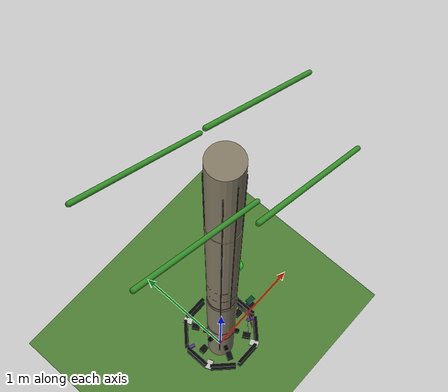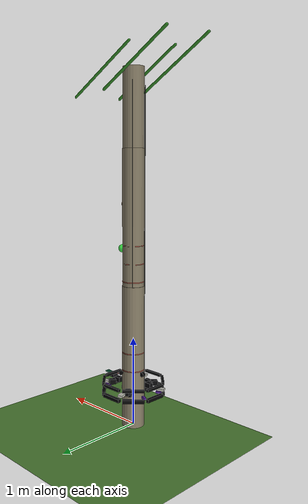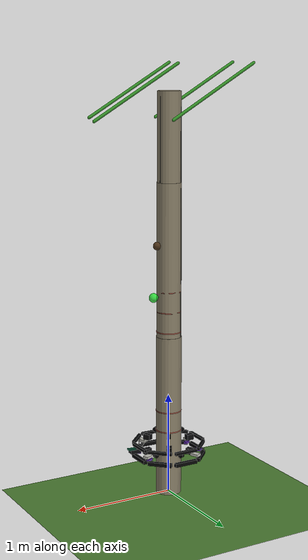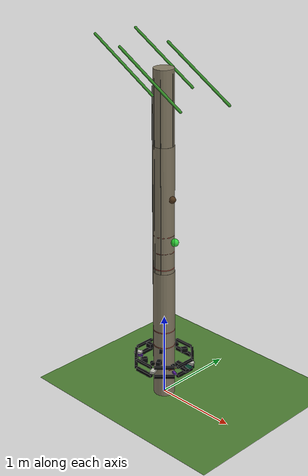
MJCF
<mujoco model="palmclimber_base_training_scene">

  <compiler angle="radian" autolimits="true"/>

  <option timestep="0.0015" gravity="0 0 -9.81" solver="Newton"
          iterations="120" tolerance="1e-9" integrator="implicitfast">
    <flag contact="enable" energy="enable"/>
  </option>

  <default>
    <geom solref="0.018 1" solimp="0.92 0.98 0.001"/>
    <joint damping="0.06" armature="0.015"/>
  </default>

  <size nconmax="600" njmax="2200"/>

  <visual>
    <global offwidth="1280" offheight="960"/>
    <headlight diffuse="0.7 0.7 0.7" ambient="0.32 0.32 0.32" specular="0.12 0.12 0.12"/>
    <rgba haze="0.78 0.88 0.94 1"/>
    <quality shadowsize="2048"/>
  </visual>

  <asset>
    <texture name="skybox" type="skybox" builtin="gradient"
             rgb1="0.55 0.72 0.84" rgb2="0.88 0.94 0.92" width="512" height="512"/>
    <texture name="grass_tex" type="2d" builtin="checker"
             rgb1="0.26 0.45 0.17" rgb2="0.34 0.54 0.23" width="64" height="64"/>
    <texture name="bark_tex" type="2d" builtin="checker"
             rgb1="0.72 0.69 0.62" rgb2="0.50 0.47 0.40" width="64" height="256"/>

    <material name="ground_mat" texture="grass_tex" texrepeat="9 9" reflectance="0.08"/>
    <material name="bark_mat" texture="bark_tex" texrepeat="2 10" rgba="0.86 0.84 0.78 1" reflectance="0.04"/>
    <material name="bark_line_mat" rgba="0.30 0.30 0.27 1"/>
    <material name="black_extrusion" rgba="0.015 0.016 0.018 1"/>
    <material name="dark_servo" rgba="0.035 0.035 0.040 1"/>
    <material name="silver_plate" rgba="0.76 0.76 0.72 1" specular="0.25" shininess="0.35"/>
    <material name="purple_bracket" rgba="0.36 0.16 0.64 1"/>
    <material name="blue_bearing" rgba="0.02 0.12 0.80 1"/>
    <material name="rubber" rgba="0.005 0.005 0.006 1"/>
    <material name="wire_red" rgba="0.85 0.05 0.02 1"/>
    <material name="wire_black" rgba="0.0 0.0 0.0 1"/>
    <material name="wire_white" rgba="0.92 0.92 0.88 1"/>
    <material name="pcb" rgba="0.02 0.28 0.18 1"/>
    <material name="leaf_mat" rgba="0.20 0.55 0.15 1"/>
    <material name="leaf_target_mat" rgba="0.15 0.90 0.20 0.85"/>
    <material name="stuck_zone_mat" rgba="0.95 0.08 0.06 0.34"/>
  </asset>

  <worldbody>
    <geom name="ground" type="plane" size="5 5 0.1" material="ground_mat"
          friction="0.8 0.01 0.01" condim="3"/>

    <light name="sun" pos="2.5 -2.2 4.5" dir="-0.45 0.42 -1"
           diffuse="0.82 0.80 0.72" specular="0.25 0.25 0.22" castshadow="true"/>
    <light name="fill" pos="-3.0 3.0 3.0" dir="0.55 -0.55 -0.75"
           diffuse="0.30 0.34 0.38" castshadow="false"/>

    <body name="tree" pos="0 0 0">
      <geom name="trunk_lower" type="cylinder" size="0.125 0.8" pos="0 0 0.8"
            material="bark_mat" friction="0.7 0.01 0.01" condim="6" solimp="0.97 0.99 0.001"/>
      <geom name="trunk_mid" type="cylinder" size="0.120 0.75" pos="0 0 2.35"
            material="bark_mat" friction="0.7 0.01 0.01" condim="6" solimp="0.97 0.99 0.001"/>
      <geom name="trunk_top" type="cylinder" size="0.115 0.45" pos="0 0 3.5"
            material="bark_mat" friction="0.7 0.01 0.01" condim="6" solimp="0.97 0.99 0.001"/>

      <!-- Thin vertical bark ridges are visual-only, so they cannot trap the
           robot by collision and create fake penetration/contact artifacts. -->
      <geom type="capsule" fromto="-0.10 -0.075 0.25 -0.10 -0.075 3.75" size="0.004"
            material="bark_line_mat" contype="0" conaffinity="0"/>
      <geom type="capsule" fromto="-0.03 -0.116 0.35 -0.03 -0.116 3.85" size="0.003"
            material="bark_line_mat" contype="0" conaffinity="0"/>
      <geom type="capsule" fromto="0.055 -0.104 0.30 0.055 -0.104 3.85" size="0.0035"
            material="bark_line_mat" contype="0" conaffinity="0"/>
      <geom type="capsule" fromto="0.112 0.025 0.40 0.112 0.025 3.9" size="0.003"
            material="bark_line_mat" contype="0" conaffinity="0"/>
      <geom type="capsule" fromto="-0.075 0.092 0.35 -0.075 0.092 3.8" size="0.0035"
            material="bark_line_mat" contype="0" conaffinity="0"/>

      <geom name="leaf1" type="capsule" size="0.015 0.5" pos="0.4 0.1 3.95" euler="0 -1.047 0.349" material="leaf_mat"/>
      <geom name="leaf2" type="capsule" size="0.015 0.5" pos="-0.3 0.3 3.95" euler="0 -1.047 2.269" material="leaf_mat"/>
      <geom name="leaf3" type="capsule" size="0.015 0.5" pos="-0.4 -0.2 3.95" euler="0 -1.047 4.189" material="leaf_mat"/>
      <geom name="leaf4" type="capsule" size="0.015 0.5" pos="0.2 -0.4 3.95" euler="0 -1.047 5.411" material="leaf_mat"/>

      <site name="coconut_target" pos="0.13 0.0 2.5" size="0.04" rgba="0.3 0.2 0.1 0.9" type="sphere"/>
      <geom name="leaf_target_geom" type="sphere" size="0.045" pos="0.17 0.0 2.0"
            material="leaf_target_mat" contype="0" conaffinity="0"/>
      <geom name="leaf_target_stem" type="capsule" size="0.008 0.06" pos="0.11 0.0 2.0"
            euler="0 1.5708 0" material="leaf_target_mat" contype="0" conaffinity="0"/>

      <!-- Local stuck patches are simulated in Python; these translucent rings
           are only visual landmarks and do not participate in contact. -->
      <geom name="sz_ring_1" type="cylinder" size="0.127 0.005" pos="0 0 0.65"
            material="stuck_zone_mat" contype="0" conaffinity="0"/>
      <geom name="sz_ring_2" type="cylinder" size="0.127 0.005" pos="0 0 0.85"
            material="stuck_zone_mat" contype="0" conaffinity="0"/>
      <geom name="sz_ring_3" type="cylinder" size="0.124 0.005" pos="0 0 1.05"
            material="stuck_zone_mat" contype="0" conaffinity="0"/>
      <geom name="sz_ring_4" type="cylinder" size="0.124 0.005" pos="0 0 1.25"
            material="stuck_zone_mat" contype="0" conaffinity="0"/>
      <geom name="sz_ring_5" type="cylinder" size="0.122 0.005" pos="0 0 1.45"
            material="stuck_zone_mat" contype="0" conaffinity="0"/>
      <geom name="sz_ring_6" type="cylinder" size="0.122 0.005" pos="0 0 1.65"
            material="stuck_zone_mat" contype="0" conaffinity="0"/>
      <geom name="sz_ring_7" type="cylinder" size="0.120 0.005" pos="0 0 1.85"
            material="stuck_zone_mat" contype="0" conaffinity="0"/>
      <geom name="sz_ring_8" type="cylinder" size="0.120 0.005" pos="0 0 2.05"
            material="stuck_zone_mat" contype="0" conaffinity="0"/>
    </body>

    <body name="climber_root" pos="0 0 0.4">
      <freejoint name="climber_free"/>
      <inertial pos="0 0 0.09" mass="2.55" diaginertia="0.070 0.070 0.120"/>

      <geom name="base_lower_0" type="box" size="0.118 0.018 0.018" pos="0.330 0.000 0.000" euler="0 0 1.5708" material="black_extrusion" contype="0" conaffinity="0"/>
      <geom name="base_lower_45" type="box" size="0.118 0.018 0.018" pos="0.233 0.233 0.000" euler="0 0 2.3562" material="black_extrusion" contype="0" conaffinity="0"/>
      <geom name="base_lower_90" type="box" size="0.118 0.018 0.018" pos="0.000 0.330 0.000" euler="0 0 3.1416" material="black_extrusion" contype="0" conaffinity="0"/>
      <geom name="base_lower_135" type="box" size="0.118 0.018 0.018" pos="-0.233 0.233 0.000" euler="0 0 3.9270" material="black_extrusion" contype="0" conaffinity="0"/>
      <geom name="base_lower_180" type="box" size="0.118 0.018 0.018" pos="-0.330 0.000 0.000" euler="0 0 4.7124" material="black_extrusion" contype="0" conaffinity="0"/>
      <geom name="base_lower_225" type="box" size="0.118 0.018 0.018" pos="-0.233 -0.233 0.000" euler="0 0 5.4978" material="black_extrusion" contype="0" conaffinity="0"/>
      <geom name="base_lower_270" type="box" size="0.118 0.018 0.018" pos="0.000 -0.330 0.000" euler="0 0 0.0000" material="black_extrusion" contype="0" conaffinity="0"/>
      <geom name="base_lower_315" type="box" size="0.118 0.018 0.018" pos="0.233 -0.233 0.000" euler="0 0 0.7854" material="black_extrusion" contype="0" conaffinity="0"/>

      <geom name="base_upper_0" type="box" size="0.118 0.014 0.014" pos="0.330 0.000 0.115" euler="0 0 1.5708" material="black_extrusion" contype="0" conaffinity="0"/>
      <geom name="base_upper_45" type="box" size="0.118 0.014 0.014" pos="0.233 0.233 0.115" euler="0 0 2.3562" material="black_extrusion" contype="0" conaffinity="0"/>
      <geom name="base_upper_90" type="box" size="0.118 0.014 0.014" pos="0.000 0.330 0.115" euler="0 0 3.1416" material="black_extrusion" contype="0" conaffinity="0"/>
      <geom name="base_upper_135" type="box" size="0.118 0.014 0.014" pos="-0.233 0.233 0.115" euler="0 0 3.9270" material="black_extrusion" contype="0" conaffinity="0"/>
      <geom name="base_upper_180" type="box" size="0.118 0.014 0.014" pos="-0.330 0.000 0.115" euler="0 0 4.7124" material="black_extrusion" contype="0" conaffinity="0"/>
      <geom name="base_upper_225" type="box" size="0.118 0.014 0.014" pos="-0.233 -0.233 0.115" euler="0 0 5.4978" material="black_extrusion" contype="0" conaffinity="0"/>
      <geom name="base_upper_270" type="box" size="0.118 0.014 0.014" pos="0.000 -0.330 0.115" euler="0 0 0.0000" material="black_extrusion" contype="0" conaffinity="0"/>
      <geom name="base_upper_315" type="box" size="0.118 0.014 0.014" pos="0.233 -0.233 0.115" euler="0 0 0.7854" material="black_extrusion" contype="0" conaffinity="0"/>

      <geom name="plate_45" type="box" size="0.042 0.028 0.012" pos="0.305 0.126 0.058" euler="0 0 0.3927" material="silver_plate" contype="0" conaffinity="0"/>
      <geom name="plate_135" type="box" size="0.042 0.028 0.012" pos="-0.126 0.305 0.058" euler="0 0 1.9635" material="silver_plate" contype="0" conaffinity="0"/>
      <geom name="plate_225" type="box" size="0.042 0.028 0.012" pos="-0.305 -0.126 0.058" euler="0 0 3.5343" material="silver_plate" contype="0" conaffinity="0"/>
      <geom name="plate_315" type="box" size="0.042 0.028 0.012" pos="0.126 -0.305 0.058" euler="0 0 5.1051" material="silver_plate" contype="0" conaffinity="0"/>
      <geom name="purple_front" type="box" size="0.030 0.014 0.012" pos="0.284 0.118 0.020" euler="0 0 0.3927" material="purple_bracket" contype="0" conaffinity="0"/>
      <geom name="purple_left" type="box" size="0.030 0.014 0.012" pos="-0.284 0.118 0.020" euler="0 0 2.7489" material="purple_bracket" contype="0" conaffinity="0"/>
      <geom name="purple_back" type="box" size="0.030 0.014 0.012" pos="-0.284 -0.118 0.020" euler="0 0 3.5343" material="purple_bracket" contype="0" conaffinity="0"/>
      <geom name="purple_right" type="box" size="0.030 0.014 0.012" pos="0.284 -0.118 0.020" euler="0 0 5.8905" material="purple_bracket" contype="0" conaffinity="0"/>

      <geom name="servo_0" type="box" size="0.036 0.026 0.028" pos="0.242 0.000 0.065" material="dark_servo" contype="0" conaffinity="0"/>
      <geom name="servo_60" type="box" size="0.036 0.026 0.028" pos="0.121 0.210 0.125" euler="0 0 1.0472" material="dark_servo" contype="0" conaffinity="0"/>
      <geom name="servo_120" type="box" size="0.036 0.026 0.028" pos="-0.121 0.210 0.065" euler="0 0 2.0944" material="dark_servo" contype="0" conaffinity="0"/>
      <geom name="servo_180" type="box" size="0.036 0.026 0.028" pos="-0.242 0.000 0.125" euler="0 0 3.1416" material="dark_servo" contype="0" conaffinity="0"/>
      <geom name="servo_240" type="box" size="0.036 0.026 0.028" pos="-0.121 -0.210 0.065" euler="0 0 4.1888" material="dark_servo" contype="0" conaffinity="0"/>
      <geom name="servo_300" type="box" size="0.036 0.026 0.028" pos="0.121 -0.210 0.125" euler="0 0 5.2360" material="dark_servo" contype="0" conaffinity="0"/>

      <geom name="electronics_box" type="box" size="0.052 0.030 0.020" pos="0.365 -0.030 0.080" euler="0 0 -0.10" material="dark_servo" contype="0" conaffinity="0"/>
      <geom name="pcb_board" type="box" size="0.040 0.025 0.006" pos="0.410 -0.010 0.110" euler="0 0 -0.10" material="pcb" contype="0" conaffinity="0"/>
      <geom name="wire_red_1" type="capsule" fromto="0.330 -0.050 0.095 0.245 -0.175 0.060" size="0.003" material="wire_red" contype="0" conaffinity="0"/>
      <geom name="wire_black_1" type="capsule" fromto="0.330 -0.040 0.080 0.210 -0.205 0.125" size="0.003" material="wire_black" contype="0" conaffinity="0"/>
      <geom name="wire_white_1" type="capsule" fromto="0.330 -0.030 0.065 0.120 -0.245 0.060" size="0.0025" material="wire_white" contype="0" conaffinity="0"/>

      <!-- The six physical wheel bodies are the only controlled contact points.
           They keep the original names expected by the env and policy. -->
      <body name="wheel1" pos="0.145 0.000 0.00">
        <joint name="wheel1_spin" type="hinge" axis="0 1 0" damping="0.08" armature="0.02"/>
        <geom name="wheel1_g" type="cylinder" size="0.025 0.018" euler="1.5708 0 0"
              material="rubber" mass="0.08" friction="1.4 0.02 0.02" condim="6"/>
        <geom name="wheel1_hub" type="sphere" size="0.011" material="blue_bearing" contype="0" conaffinity="0"/>
      </body>

      <body name="wheel2" pos="0.0725 0.1255 0.22">
        <joint name="wheel2_spin" type="hinge" axis="-0.866 0.5 0" damping="0.08" armature="0.02"/>
        <geom name="wheel2_g" type="cylinder" size="0.025 0.018" euler="1.5708 1.0472 0"
              material="rubber" mass="0.08" friction="1.4 0.02 0.02" condim="6"/>
        <geom name="wheel2_hub" type="sphere" size="0.011" material="blue_bearing" contype="0" conaffinity="0"/>
      </body>

      <body name="wheel3" pos="-0.0725 0.1255 0.00">
        <joint name="wheel3_spin" type="hinge" axis="-0.866 -0.5 0" damping="0.08" armature="0.02"/>
        <geom name="wheel3_g" type="cylinder" size="0.025 0.018" euler="1.5708 2.0944 0"
              material="rubber" mass="0.08" friction="1.4 0.02 0.02" condim="6"/>
        <geom name="wheel3_hub" type="sphere" size="0.011" material="blue_bearing" contype="0" conaffinity="0"/>
      </body>

      <body name="wheel4" pos="-0.145 0.000 0.22">
        <joint name="wheel4_spin" type="hinge" axis="0 -1 0" damping="0.08" armature="0.02"/>
        <geom name="wheel4_g" type="cylinder" size="0.025 0.018" euler="1.5708 0 0"
              material="rubber" mass="0.08" friction="1.4 0.02 0.02" condim="6"/>
        <geom name="wheel4_hub" type="sphere" size="0.011" material="blue_bearing" contype="0" conaffinity="0"/>
      </body>

      <body name="wheel5" pos="-0.0725 -0.1255 0.00">
        <joint name="wheel5_spin" type="hinge" axis="0.866 -0.5 0" damping="0.08" armature="0.02"/>
        <geom name="wheel5_g" type="cylinder" size="0.025 0.018" euler="1.5708 4.1888 0"
              material="rubber" mass="0.08" friction="1.4 0.02 0.02" condim="6"/>
        <geom name="wheel5_hub" type="sphere" size="0.011" material="blue_bearing" contype="0" conaffinity="0"/>
      </body>

      <body name="wheel6" pos="0.0725 -0.1255 0.22">
        <joint name="wheel6_spin" type="hinge" axis="0.866 0.5 0" damping="0.08" armature="0.02"/>
        <geom name="wheel6_g" type="cylinder" size="0.025 0.018" euler="1.5708 5.2360 0"
              material="rubber" mass="0.08" friction="1.4 0.02 0.02" condim="6"/>
        <geom name="wheel6_hub" type="sphere" size="0.011" material="blue_bearing" contype="0" conaffinity="0"/>
      </body>

      <site name="imu_site" pos="0 0 0.11" size="0.006" rgba="1 1 0 1"/>
      <site name="com_site" pos="0 0 0.09" size="0.006" rgba="0 1 0 0.45"/>
    </body>
  </worldbody>

  <actuator>
    <velocity name="vel_wheel1" joint="wheel1_spin" kv="1.2" ctrlrange="-25 25" forcerange="-6 6"/>
    <velocity name="vel_wheel2" joint="wheel2_spin" kv="1.2" ctrlrange="-25 25" forcerange="-6 6"/>
    <velocity name="vel_wheel3" joint="wheel3_spin" kv="1.2" ctrlrange="-25 25" forcerange="-6 6"/>
    <velocity name="vel_wheel4" joint="wheel4_spin" kv="1.2" ctrlrange="-25 25" forcerange="-6 6"/>
    <velocity name="vel_wheel5" joint="wheel5_spin" kv="1.2" ctrlrange="-25 25" forcerange="-6 6"/>
    <velocity name="vel_wheel6" joint="wheel6_spin" kv="1.2" ctrlrange="-25 25" forcerange="-6 6"/>
  </actuator>

  <sensor>
    <framequat name="body_quat" objtype="site" objname="imu_site"/>
    <frameangvel name="body_angvel" objtype="site" objname="imu_site"/>
    <framelinvel name="body_linvel" objtype="site" objname="imu_site"/>
  </sensor>

  <keyframe>
    <key name="home"
         qpos="0 0 0.4 1 0 0 0 0 0 0 0 0 0"
         ctrl="0 0 0 0 0 0"/>
  </keyframe>
</mujoco>
